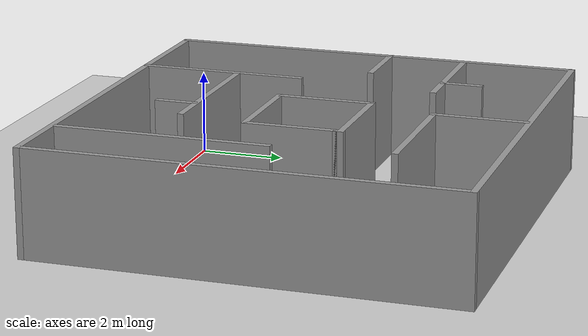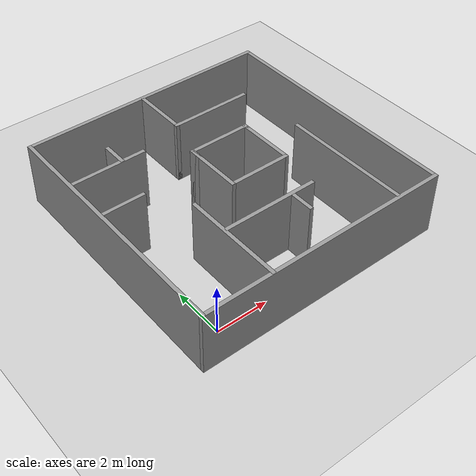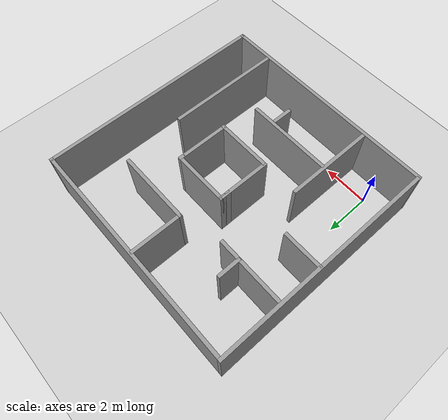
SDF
<sdf version="1.6">
 <world name="default">
  <light name="sun" type="directional">
   <pose>0 0 10 0 -0 0</pose>
   <diffuse>0.8 0.8 0.8 1</diffuse>
   <specular>0.1 0.1 0.1 1</specular>
   <attenuation>
    <range>1000</range>
    <constant>0.9</constant>
    <linear>0.01</linear>
    <quadratic>0.001</quadratic>
   </attenuation>
   <direction>-0.5 0.5 -1</direction>
  </light>
  <model name="ground_plane">
   <static>1</static>
   <link name="link">
    <collision name="collision">
     <geometry><plane><normal>0 0 1</normal><size>100 100</size></plane></geometry>
     <surface><friction><ode><mu>100</mu><mu2>50</mu2></ode></friction></surface>
    </collision>
    <visual name="visual">
     <cast_shadows>0</cast_shadows>
     <geometry><plane><normal>0 0 1</normal><size>100 100</size></plane></geometry>
     <material>
      <script><uri>file://media/materials/scripts/gazebo.material</uri><name>Gazebo/Grey</name></script>
     </material>
    </visual>
   </link>
  </model>
  <gravity>0 0 -9.8</gravity>
  <magnetic_field>6e-06 2.3e-05 -4.2e-05</magnetic_field>
  <atmosphere type="adiabatic"/>
  <physics name="default_physics" default="0" type="ode">
   <max_step_size>0.001</max_step_size>
   <real_time_factor>1</real_time_factor>
   <real_time_update_rate>1000</real_time_update_rate>
  </physics>
  <scene><ambient>0.4 0.4 0.4 1</ambient><background>0.7 0.7 0.7 1</background><shadows>1</shadows></scene>
  <spherical_coordinates>
   <surface_model>EARTH_WGS84</surface_model>
   <latitude_deg>0</latitude_deg>
   <longitude_deg>0</longitude_deg>
   <elevation>0</elevation>
   <heading_deg>0</heading_deg>
  </spherical_coordinates>
  <model name="room">
   <pose>3.69076 4.01991 0 0 -0 0</pose>
   <link name="Wall_12">
    <collision name="Wall_12_Collision">
     <geometry><box><size>4 0.15 2.5</size></box></geometry>
     <pose>0 0 1.25 0 -0 0</pose>
    </collision>
    <visual name="Wall_12_Visual">
     <pose>0 0 1.25 0 -0 0</pose>
     <geometry><box><size>4 0.15 2.5</size></box></geometry>
     <material>
      <script><uri>file://media/materials/scripts/gazebo.material</uri><name>Gazebo/Grey</name></script>
      <ambient>1 1 1 1</ambient>
     </material>
     <meta><layer>0</layer></meta>
    </visual>
    <pose>-2.259 -2.98119 0 0 -0 1.5708</pose>
   </link>
   <link name="Wall_14">
    <collision name="Wall_14_Collision">
     <geometry><box><size>2.25 0.15 2.5</size></box></geometry>
     <pose>0 0 1.25 0 -0 0</pose>
    </collision>
    <visual name="Wall_14_Visual">
     <pose>0 0 1.25 0 -0 0</pose>
     <geometry><box><size>2.25 0.15 2.5</size></box></geometry>
     <material>
      <script><uri>file://media/materials/scripts/gazebo.material</uri><name>Gazebo/Grey</name></script>
      <ambient>1 1 1 1</ambient>
     </material>
     <meta><layer>0</layer></meta>
    </visual>
    <pose>-0.646868 0.044607 0 0 0 -1.5708</pose>
   </link>
   <link name="Wall_15">
    <collision name="Wall_15_Collision">
     <geometry><box><size>2.5 0.15 2.5</size></box></geometry>
     <pose>0 0 1.25 0 -0 0</pose>
    </collision>
    <visual name="Wall_15_Visual">
     <pose>0 0 1.25 0 -0 0</pose>
     <geometry><box><size>2.5 0.15 2.5</size></box></geometry>
     <material>
      <script><uri>file://media/materials/scripts/gazebo.material</uri><name>Gazebo/Grey</name></script>
      <ambient>1 1 1 1</ambient>
     </material>
     <meta><layer>0</layer></meta>
    </visual>
    <pose>0.528132 -1.00539 0 0 -0 0</pose>
   </link>
   <link name="Wall_16">
    <collision name="Wall_16_Collision">
     <geometry><box><size>2.25 0.15 2.5</size></box></geometry>
     <pose>0 0 1.25 0 -0 0</pose>
    </collision>
    <visual name="Wall_16_Visual">
     <pose>0 0 1.25 0 -0 0</pose>
     <geometry><box><size>2.25 0.15 2.5</size></box></geometry>
     <material>
      <script><uri>file://media/materials/scripts/gazebo.material</uri><name>Gazebo/Grey</name></script>
      <ambient>1 1 1 1</ambient>
     </material>
     <meta><layer>0</layer></meta>
    </visual>
    <pose>1.70313 0.044607 0 0 -0 1.5708</pose>
   </link>
   <link name="Wall_17">
    <collision name="Wall_17_Collision">
     <geometry><box><size>0.15 0.15 2.5</size></box></geometry>
     <pose>0 0 1.25 0 -0 0</pose>
    </collision>
    <visual name="Wall_17_Visual">
     <pose>0 0 1.25 0 -0 0</pose>
     <geometry><box><size>0.15 0.15 2.5</size></box></geometry>
     <material>
      <script><uri>file://media/materials/scripts/gazebo.material</uri><name>Gazebo/Grey</name></script>
      <ambient>1 1 1 1</ambient>
     </material>
     <meta><layer>0</layer></meta>
    </visual>
    <pose>1.70313 1.09461 0 0 -0 0</pose>
   </link>
   <link name="Wall_18">
    <collision name="Wall_18_Collision">
     <geometry><box><size>0.25 0.15 2.5</size></box></geometry>
     <pose>0 0 1.25 0 -0 0</pose>
    </collision>
    <visual name="Wall_18_Visual">
     <pose>0 0 1.25 0 -0 0</pose>
     <geometry><box><size>0.25 0.15 2.5</size></box></geometry>
     <material>
      <script><uri>file://media/materials/scripts/gazebo.material</uri><name>Gazebo/Grey</name></script>
      <ambient>1 1 1 1</ambient>
     </material>
     <meta><layer>0</layer></meta>
    </visual>
    <pose>1.70313 1.14461 0 0 -0 1.5708</pose>
   </link>
   <link name="Wall_19">
    <collision name="Wall_19_Collision">
     <geometry><box><size>2.5 0.15 2.5</size></box></geometry>
     <pose>0 0 1.25 0 -0 0</pose>
    </collision>
    <visual name="Wall_19_Visual">
     <pose>0 0 1.25 0 -0 0</pose>
     <geometry><box><size>2.5 0.15 2.5</size></box></geometry>
     <material>
      <script><uri>file://media/materials/scripts/gazebo.material</uri><name>Gazebo/Grey</name></script>
      <ambient>1 1 1 1</ambient>
     </material>
     <meta><layer>0</layer></meta>
    </visual>
    <pose>0.528132 1.19461 0 0 -0 3.14159</pose>
   </link>
   <link name="Wall_20">
    <collision name="Wall_20_Collision">
     <geometry><box><size>0.5 0.15 2.5</size></box></geometry>
     <pose>0 0 1.25 0 -0 0</pose>
    </collision>
    <visual name="Wall_20_Visual">
     <pose>0 0 1.25 0 -0 0</pose>
     <geometry><box><size>0.5 0.15 2.5</size></box></geometry>
     <material>
      <script><uri>file://media/materials/scripts/gazebo.material</uri><name>Gazebo/Grey</name></script>
      <ambient>1 1 1 1</ambient>
     </material>
     <meta><layer>0</layer></meta>
    </visual>
    <pose>-0.646868 1.01961 0 0 0 -1.5708</pose>
   </link>
   <link name="Wall_21">
    <collision name="Wall_21_Collision">
     <geometry><box><size>0.5 0.15 2.5</size></box></geometry>
     <pose>0 0 1.25 0 -0 0</pose>
    </collision>
    <visual name="Wall_21_Visual">
     <pose>0 0 1.25 0 -0 0</pose>
     <geometry><box><size>0.5 0.15 2.5</size></box></geometry>
     <material>
      <script><uri>file://media/materials/scripts/gazebo.material</uri><name>Gazebo/Grey</name></script>
      <ambient>1 1 1 1</ambient>
     </material>
     <meta><layer>0</layer></meta>
    </visual>
    <pose>-0.646868 1.01961 0 0 -0 1.5708</pose>
   </link>
   <link name="Wall_23">
    <collision name="Wall_23_Collision">
     <geometry><box><size>3.75 0.15 2.5</size></box></geometry>
     <pose>0 0 1.25 0 -0 0</pose>
    </collision>
    <visual name="Wall_23_Visual">
     <pose>0 0 1.25 0 -0 0</pose>
     <geometry><box><size>3.75 0.15 2.5</size></box></geometry>
     <material>
      <script><uri>file://media/materials/scripts/gazebo.material</uri><name>Gazebo/Grey</name></script>
      <ambient>1 1 1 1</ambient>
     </material>
     <meta><layer>0</layer></meta>
    </visual>
    <pose>-0.352534 -2.59446 0 0 -0 0</pose>
   </link>
   <link name="Wall_25">
    <collision name="Wall_25_Collision">
     <geometry><box><size>3 0.15 2.5</size></box></geometry>
     <pose>0 0 1.25 0 -0 0</pose>
    </collision>
    <visual name="Wall_25_Visual">
     <pose>0 0 1.25 0 -0 0</pose>
     <geometry><box><size>3 0.15 2.5</size></box></geometry>
     <material>
      <script><uri>file://media/materials/scripts/gazebo.material</uri><name>Gazebo/Grey</name></script>
      <ambient>1 1 1 1</ambient>
     </material>
     <meta><layer>0</layer></meta>
    </visual>
    <pose>-3.41948 2.28755 0 0 -0 0</pose>
   </link>
   <link name="Wall_27">
    <collision name="Wall_27_Collision">
     <geometry><box><size>1 0.15 2.5</size></box></geometry>
     <pose>0 0 1.25 0 -0 0</pose>
    </collision>
    <visual name="Wall_27_Visual">
     <pose>0 0 1.25 0 -0 0</pose>
     <geometry><box><size>1 0.15 2.5</size></box></geometry>
     <material>
      <script><uri>file://media/materials/scripts/gazebo.material</uri><name>Gazebo/Grey</name></script>
      <ambient>1 1 1 1</ambient>
     </material>
     <meta><layer>0</layer></meta>
    </visual>
    <pose>-2.85214 2.74297 0 0 -0 1.5708</pose>
   </link>
   <link name="Wall_29">
    <collision name="Wall_29_Collision">
     <geometry><box><size>2.25 0.15 2.5</size></box></geometry>
     <pose>0 0 1.25 0 -0 0</pose>
    </collision>
    <visual name="Wall_29_Visual">
     <pose>0 0 1.25 0 -0 0</pose>
     <geometry><box><size>2.25 0.15 2.5</size></box></geometry>
     <material>
      <script><uri>file://media/materials/scripts/gazebo.material</uri><name>Gazebo/Grey</name></script>
      <ambient>1 1 1 1</ambient>
     </material>
     <meta><layer>0</layer></meta>
    </visual>
    <pose>-0.190605 3.80783 0 0 0 -1.5708</pose>
   </link>
   <link name="Wall_30">
    <collision name="Wall_30_Collision">
     <geometry><box><size>3.25 0.15 2.5</size></box></geometry>
     <pose>0 0 1.25 0 -0 0</pose>
    </collision>
    <visual name="Wall_30_Visual">
     <pose>0 0 1.25 0 -0 0</pose>
     <geometry><box><size>3.25 0.15 2.5</size></box></geometry>
     <material>
      <script><uri>file://media/materials/scripts/gazebo.material</uri><name>Gazebo/Grey</name></script>
      <ambient>1 1 1 1</ambient>
     </material>
     <meta><layer>0</layer></meta>
    </visual>
    <pose>1.35939 2.75783 0 0 -0 0</pose>
   </link>
   <link name="Wall_32">
    <collision name="Wall_32_Collision">
     <geometry><box><size>1.75 0.15 2.5</size></box></geometry>
     <pose>0 0 1.25 0 -0 0</pose>
    </collision>
    <visual name="Wall_32_Visual">
     <pose>0 0 1.25 0 -0 0</pose>
     <geometry><box><size>1.75 0.15 2.5</size></box></geometry>
     <material>
      <script><uri>file://media/materials/scripts/gazebo.material</uri><name>Gazebo/Grey</name></script>
      <ambient>1 1 1 1</ambient>
     </material>
     <meta><layer>0</layer></meta>
    </visual>
    <pose>-4.0749 0.416874 0 0 -0 0</pose>
   </link>
   <link name="Wall_34">
    <collision name="Wall_34_Collision">
     <geometry><box><size>5 0.15 2.5</size></box></geometry>
     <pose>0 0 1.25 0 -0 0</pose>
    </collision>
    <visual name="Wall_34_Visual">
     <pose>0 0 1.25 0 -0 0</pose>
     <geometry><box><size>5 0.15 2.5</size></box></geometry>
     <material>
      <script><uri>file://media/materials/scripts/gazebo.material</uri><name>Gazebo/Grey</name></script>
      <ambient>1 1 1 1</ambient>
     </material>
     <meta><layer>0</layer></meta>
    </visual>
    <pose>3.20095 -2.38994 0 0 -0 1.5708</pose>
   </link>
   <link name="Wall_36">
    <collision name="Wall_36_Collision">
     <geometry><box><size>1 0.15 2.5</size></box></geometry>
     <pose>0 0 1.25 0 -0 0</pose>
    </collision>
    <visual name="Wall_36_Visual">
     <pose>0 0 1.25 0 -0 0</pose>
     <geometry><box><size>1 0.15 2.5</size></box></geometry>
     <material>
      <script><uri>file://media/materials/scripts/gazebo.material</uri><name>Gazebo/Grey</name></script>
      <ambient>1 1 1 1</ambient>
     </material>
     <meta><layer>0</layer></meta>
    </visual>
    <pose>0.554623 -3.06508 0 0 0 -1.5708</pose>
   </link>
   <link name="Wall_4">
    <collision name="Wall_4_Collision">
     <geometry><box><size>10 0.15 2.5</size></box></geometry>
     <pose>0 0 1.25 0 -0 0</pose>
    </collision>
    <visual name="Wall_4_Visual">
     <pose>0 0 1.25 0 -0 0</pose>
     <geometry><box><size>10 0.15 2.5</size></box></geometry>
     <material>
      <script><uri>file://media/materials/scripts/gazebo.material</uri><name>Gazebo/Grey</name></script>
      <ambient>1 1 1 1</ambient>
     </material>
     <meta><layer>0</layer></meta>
    </visual>
    <pose>-4.925 0.007604 0 0 -0 1.5708</pose>
   </link>
   <link name="Wall_6">
    <collision name="Wall_6_Collision">
     <geometry><box><size>10 0.15 2.5</size></box></geometry>
     <pose>0 0 1.25 0 -0 0</pose>
    </collision>
    <visual name="Wall_6_Visual">
     <pose>0 0 1.25 0 -0 0</pose>
     <geometry><box><size>10 0.15 2.5</size></box></geometry>
     <material>
      <script><uri>file://media/materials/scripts/gazebo.material</uri><name>Gazebo/Grey</name></script>
      <ambient>1 1 1 1</ambient>
     </material>
     <meta><layer>0</layer></meta>
    </visual>
    <pose>0 4.9326 0 0 -0 0</pose>
   </link>
   <link name="Wall_7">
    <collision name="Wall_7_Collision">
     <geometry><box><size>10 0.15 2.5</size></box></geometry>
     <pose>0 0 1.25 0 -0 0</pose>
    </collision>
    <visual name="Wall_7_Visual">
     <pose>0 0 1.25 0 -0 0</pose>
     <geometry><box><size>10 0.15 2.5</size></box></geometry>
     <material>
      <script><uri>file://media/materials/scripts/gazebo.material</uri><name>Gazebo/Grey</name></script>
      <ambient>1 1 1 1</ambient>
     </material>
     <meta><layer>0</layer></meta>
    </visual>
    <pose>4.925 0.007604 0 0 0 -1.5708</pose>
   </link>
   <link name="Wall_8">
    <collision name="Wall_8_Collision">
     <geometry><box><size>10 0.15 2.5</size></box></geometry>
     <pose>0 0 1.25 0 -0 0</pose>
    </collision>
    <visual name="Wall_8_Visual">
     <pose>0 0 1.25 0 -0 0</pose>
     <geometry><box><size>10 0.15 2.5</size></box></geometry>
     <material>
      <script><uri>file://media/materials/scripts/gazebo.material</uri><name>Gazebo/Grey</name></script>
      <ambient>1 1 1 1</ambient>
     </material>
     <meta><layer>0</layer></meta>
    </visual>
    <pose>0 -4.9326 0 0 -0 3.14159</pose>
   </link>
   <static>1</static>
  </model>
  <audio><device>default</device></audio>
 </world>
</sdf>
